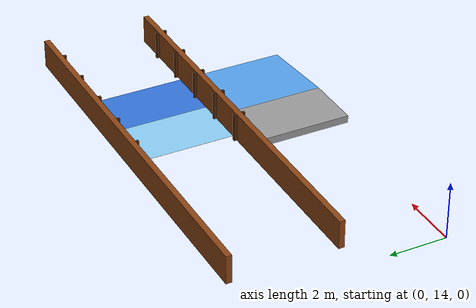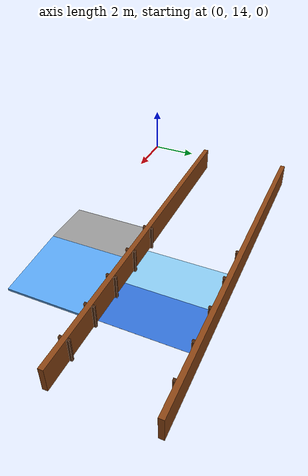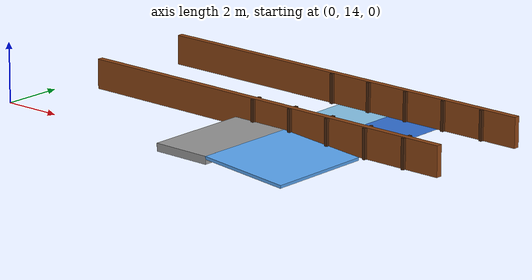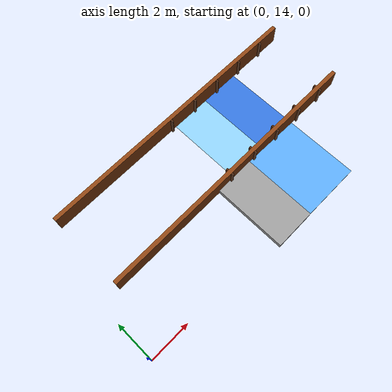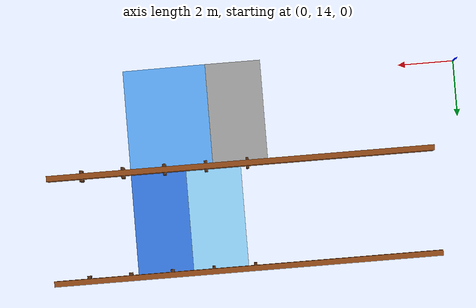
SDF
<sdf version="1.6">
 <world name="terrain_world">
  <model name="lane_wall_5">
   <static>true</static>
   <pose>8.0000 17.1000 0.5000 0.00000 0.00000 0.00000</pose>
   <link name="link">
    <collision name="col"><geometry><box><size>14.0000 0.2000 1.0000</size></box></geometry></collision>
    <visual name="vis">
     <geometry><box><size>14.0000 0.2000 1.0000</size></box></geometry>
     <material><ambient>0.55 0.27 0.08 1</ambient><diffuse>0.55 0.27 0.08 1</diffuse></material>
    </visual>
   </link>
  </model>
  <model name="lane_wall_6">
   <static>true</static>
   <pose>8.0000 20.9000 0.5000 0.00000 0.00000 0.00000</pose>
   <link name="link">
    <collision name="col"><geometry><box><size>14.0000 0.2000 1.0000</size></box></geometry></collision>
    <visual name="vis">
     <geometry><box><size>14.0000 0.2000 1.0000</size></box></geometry>
     <material><ambient>0.55 0.27 0.08 1</ambient><diffuse>0.55 0.27 0.08 1</diffuse></material>
    </visual>
   </link>
  </model>
  <model name="lane4_rib_l4">
   <static>true</static>
   <pose>7.7500 16.9500 0.5000 0.00000 0.00000 0.00000</pose>
   <link name="link">
    <collision name="col"><geometry><box><size>0.1000 0.1000 1.0000</size></box></geometry></collision>
    <visual name="vis">
     <geometry><box><size>0.1000 0.1000 1.0000</size></box></geometry>
     <material><ambient>0.30 0.15 0.05 1</ambient><diffuse>0.30 0.15 0.05 1</diffuse></material>
    </visual>
   </link>
  </model>
  <model name="lane4_rib_l5">
   <static>true</static>
   <pose>9.2500 16.9500 0.5000 0.00000 0.00000 0.00000</pose>
   <link name="link">
    <collision name="col"><geometry><box><size>0.1000 0.1000 1.0000</size></box></geometry></collision>
    <visual name="vis">
     <geometry><box><size>0.1000 0.1000 1.0000</size></box></geometry>
     <material><ambient>0.30 0.15 0.05 1</ambient><diffuse>0.30 0.15 0.05 1</diffuse></material>
    </visual>
   </link>
  </model>
  <model name="lane4_rib_l6">
   <static>true</static>
   <pose>10.7500 16.9500 0.5000 0.00000 0.00000 0.00000</pose>
   <link name="link">
    <collision name="col"><geometry><box><size>0.1000 0.1000 1.0000</size></box></geometry></collision>
    <visual name="vis">
     <geometry><box><size>0.1000 0.1000 1.0000</size></box></geometry>
     <material><ambient>0.30 0.15 0.05 1</ambient><diffuse>0.30 0.15 0.05 1</diffuse></material>
    </visual>
   </link>
  </model>
  <model name="lane4_rib_l7">
   <static>true</static>
   <pose>12.2500 16.9500 0.5000 0.00000 0.00000 0.00000</pose>
   <link name="link">
    <collision name="col"><geometry><box><size>0.1000 0.1000 1.0000</size></box></geometry></collision>
    <visual name="vis">
     <geometry><box><size>0.1000 0.1000 1.0000</size></box></geometry>
     <material><ambient>0.30 0.15 0.05 1</ambient><diffuse>0.30 0.15 0.05 1</diffuse></material>
    </visual>
   </link>
  </model>
  <model name="lane4_rib_l8">
   <static>true</static>
   <pose>13.7500 16.9500 0.5000 0.00000 0.00000 0.00000</pose>
   <link name="link">
    <collision name="col"><geometry><box><size>0.1000 0.1000 1.0000</size></box></geometry></collision>
    <visual name="vis">
     <geometry><box><size>0.1000 0.1000 1.0000</size></box></geometry>
     <material><ambient>0.30 0.15 0.05 1</ambient><diffuse>0.30 0.15 0.05 1</diffuse></material>
    </visual>
   </link>
  </model>
  <model name="lane5_rib_l4">
   <static>true</static>
   <pose>7.7500 20.7500 0.5000 0.00000 0.00000 0.00000</pose>
   <link name="link">
    <collision name="col"><geometry><box><size>0.1000 0.1000 1.0000</size></box></geometry></collision>
    <visual name="vis">
     <geometry><box><size>0.1000 0.1000 1.0000</size></box></geometry>
     <material><ambient>0.30 0.15 0.05 1</ambient><diffuse>0.30 0.15 0.05 1</diffuse></material>
    </visual>
   </link>
  </model>
  <model name="lane5_rib_l5">
   <static>true</static>
   <pose>9.2500 20.7500 0.5000 0.00000 0.00000 0.00000</pose>
   <link name="link">
    <collision name="col"><geometry><box><size>0.1000 0.1000 1.0000</size></box></geometry></collision>
    <visual name="vis">
     <geometry><box><size>0.1000 0.1000 1.0000</size></box></geometry>
     <material><ambient>0.30 0.15 0.05 1</ambient><diffuse>0.30 0.15 0.05 1</diffuse></material>
    </visual>
   </link>
  </model>
  <model name="lane5_rib_l6">
   <static>true</static>
   <pose>10.7500 20.7500 0.5000 0.00000 0.00000 0.00000</pose>
   <link name="link">
    <collision name="col"><geometry><box><size>0.1000 0.1000 1.0000</size></box></geometry></collision>
    <visual name="vis">
     <geometry><box><size>0.1000 0.1000 1.0000</size></box></geometry>
     <material><ambient>0.30 0.15 0.05 1</ambient><diffuse>0.30 0.15 0.05 1</diffuse></material>
    </visual>
   </link>
  </model>
  <model name="lane5_rib_l7">
   <static>true</static>
   <pose>12.2500 20.7500 0.5000 0.00000 0.00000 0.00000</pose>
   <link name="link">
    <collision name="col"><geometry><box><size>0.1000 0.1000 1.0000</size></box></geometry></collision>
    <visual name="vis">
     <geometry><box><size>0.1000 0.1000 1.0000</size></box></geometry>
     <material><ambient>0.30 0.15 0.05 1</ambient><diffuse>0.30 0.15 0.05 1</diffuse></material>
    </visual>
   </link>
  </model>
  <model name="lane5_rib_l8">
   <static>true</static>
   <pose>13.7500 20.7500 0.5000 0.00000 0.00000 0.00000</pose>
   <link name="link">
    <collision name="col"><geometry><box><size>0.1000 0.1000 1.0000</size></box></geometry></collision>
    <visual name="vis">
     <geometry><box><size>0.1000 0.1000 1.0000</size></box></geometry>
     <material><ambient>0.30 0.15 0.05 1</ambient><diffuse>0.30 0.15 0.05 1</diffuse></material>
    </visual>
   </link>
  </model>
  <model name="lane5_rib_r4">
   <static>true</static>
   <pose>7.7500 17.2500 0.5000 0.00000 0.00000 0.00000</pose>
   <link name="link">
    <collision name="col"><geometry><box><size>0.1000 0.1000 1.0000</size></box></geometry></collision>
    <visual name="vis">
     <geometry><box><size>0.1000 0.1000 1.0000</size></box></geometry>
     <material><ambient>0.30 0.15 0.05 1</ambient><diffuse>0.30 0.15 0.05 1</diffuse></material>
    </visual>
   </link>
  </model>
  <model name="lane5_rib_r5">
   <static>true</static>
   <pose>9.2500 17.2500 0.5000 0.00000 0.00000 0.00000</pose>
   <link name="link">
    <collision name="col"><geometry><box><size>0.1000 0.1000 1.0000</size></box></geometry></collision>
    <visual name="vis">
     <geometry><box><size>0.1000 0.1000 1.0000</size></box></geometry>
     <material><ambient>0.30 0.15 0.05 1</ambient><diffuse>0.30 0.15 0.05 1</diffuse></material>
    </visual>
   </link>
  </model>
  <model name="lane5_rib_r6">
   <static>true</static>
   <pose>10.7500 17.2500 0.5000 0.00000 0.00000 0.00000</pose>
   <link name="link">
    <collision name="col"><geometry><box><size>0.1000 0.1000 1.0000</size></box></geometry></collision>
    <visual name="vis">
     <geometry><box><size>0.1000 0.1000 1.0000</size></box></geometry>
     <material><ambient>0.30 0.15 0.05 1</ambient><diffuse>0.30 0.15 0.05 1</diffuse></material>
    </visual>
   </link>
  </model>
  <model name="lane5_rib_r7">
   <static>true</static>
   <pose>12.2500 17.2500 0.5000 0.00000 0.00000 0.00000</pose>
   <link name="link">
    <collision name="col"><geometry><box><size>0.1000 0.1000 1.0000</size></box></geometry></collision>
    <visual name="vis">
     <geometry><box><size>0.1000 0.1000 1.0000</size></box></geometry>
     <material><ambient>0.30 0.15 0.05 1</ambient><diffuse>0.30 0.15 0.05 1</diffuse></material>
    </visual>
   </link>
  </model>
  <model name="lane5_rib_r8">
   <static>true</static>
   <pose>13.7500 17.2500 0.5000 0.00000 0.00000 0.00000</pose>
   <link name="link">
    <collision name="col"><geometry><box><size>0.1000 0.1000 1.0000</size></box></geometry></collision>
    <visual name="vis">
     <geometry><box><size>0.1000 0.1000 1.0000</size></box></geometry>
     <material><ambient>0.30 0.15 0.05 1</ambient><diffuse>0.30 0.15 0.05 1</diffuse></material>
    </visual>
   </link>
  </model>
  <model name="lane4_plateau">
   <static>true</static>
   <pose>8.0000 15.2000 0.1312 0.00000 0.00000 0.00000</pose>
   <link name="link">
    <collision name="col">
     <geometry><box><size>2.0000 3.6000 0.2625</size></box></geometry>
     <surface><friction><ode><mu>1.0</mu><mu2>1.0</mu2></ode></friction></surface>
    </collision>
    <visual name="vis">
     <geometry><box><size>2.0000 3.6000 0.2625</size></box></geometry>
     <material><ambient>0.60 0.60 0.60 1</ambient><diffuse>0.60 0.60 0.60 1</diffuse></material>
    </visual>
   </link>
  </model>
  <model name="lane4_ramp_down_ice">
   <static>true</static>
   <pose>10.4956 15.2000 0.0814 0.00000 0.08727 0.00000</pose>
   <link name="link">
    <collision name="col">
     <geometry><box><size>3.0115 3.6000 0.1000</size></box></geometry>
     <surface><friction><ode><mu>0.1</mu><mu2>0.1</mu2></ode></friction></surface>
    </collision>
    <visual name="vis">
     <geometry><box><size>3.0115 3.6000 0.1000</size></box></geometry>
     <material><ambient>0.35 0.65 0.95 1</ambient><diffuse>0.35 0.65 0.95 1</diffuse></material>
    </visual>
   </link>
  </model>
  <model name="lane5_mild">
   <static>true</static>
   <pose>9.0000 19.0000 0.0010 0.00000 0.00000 0.00000</pose>
   <link name="link">
    <collision name="col">
     <geometry><box><size>2.0000 3.6000 0.0020</size></box></geometry>
     <surface><friction><ode><mu>0.3</mu><mu2>0.3</mu2></ode></friction></surface>
    </collision>
    <visual name="vis">
     <geometry><box><size>2.0000 3.6000 0.0020</size></box></geometry>
     <material><ambient>0.55 0.80 0.95 1</ambient><diffuse>0.55 0.80 0.95 1</diffuse></material>
    </visual>
   </link>
  </model>
  <model name="lane5_severe">
   <static>true</static>
   <pose>11.0000 19.0000 0.0010 0.00000 0.00000 0.00000</pose>
   <link name="link">
    <collision name="col">
     <geometry><box><size>2.0000 3.6000 0.0020</size></box></geometry>
     <surface><friction><ode><mu>0.05</mu><mu2>0.05</mu2></ode></friction></surface>
    </collision>
    <visual name="vis">
     <geometry><box><size>2.0000 3.6000 0.0020</size></box></geometry>
     <material><ambient>0.20 0.45 0.85 1</ambient><diffuse>0.20 0.45 0.85 1</diffuse></material>
    </visual>
   </link>
  </model>
 </world>
</sdf>
